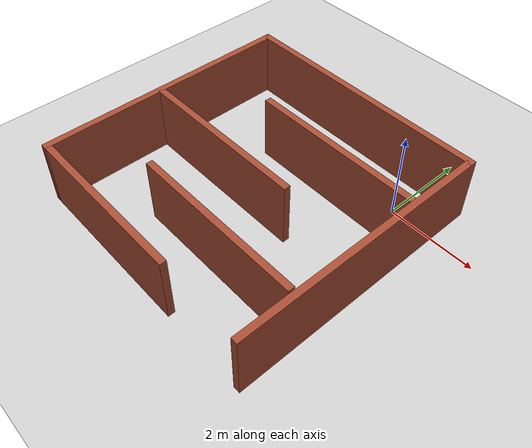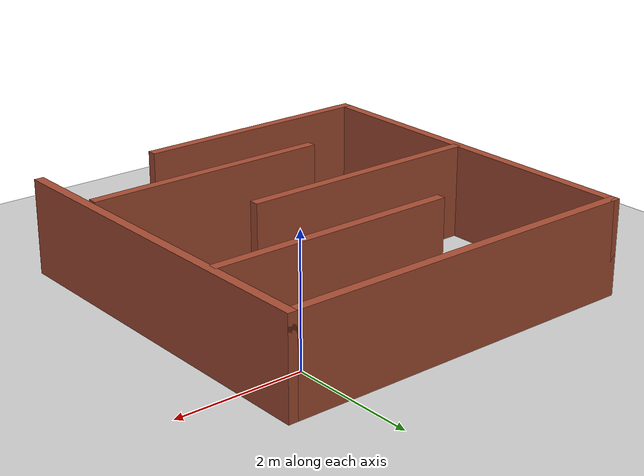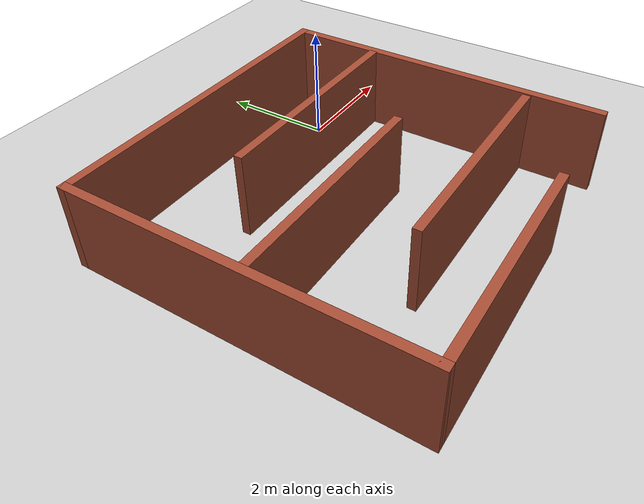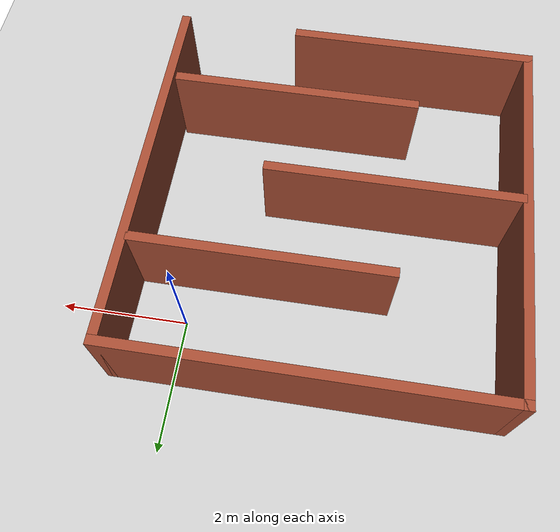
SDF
<sdf version="1.6">
 <world name="default">
  <light name="sun" type="directional">
   <pose>0 0 10 0 -0 0</pose>
   <diffuse>0.8 0.8 0.8 1</diffuse>
   <specular>0.2 0.2 0.2 1</specular>
   <attenuation>
    <range>1000</range>
    <constant>0.9</constant>
    <linear>0.01</linear>
    <quadratic>0.001</quadratic>
   </attenuation>
   <direction>-0.5 0.1 -0.9</direction>
  </light>
  <model name="ground_plane">
   <static>1</static>
   <link name="link">
    <collision name="collision">
     <geometry><plane><normal>0 0 1</normal><size>100 100</size></plane></geometry>
     <surface>
      <contact><collide_bitmask>65535</collide_bitmask></contact>
      <friction><ode><mu>100</mu><mu2>50</mu2></ode></friction>
     </surface>
    </collision>
    <visual name="visual">
     <cast_shadows>0</cast_shadows>
     <geometry><plane><normal>0 0 1</normal><size>100 100</size></plane></geometry>
     <material>
      <script><uri>file://media/materials/scripts/gazebo.material</uri><name>Gazebo/Grey</name></script>
     </material>
    </visual>
   </link>
  </model>
  <physics name="default_physics" default="0" type="ode">
   <real_time_update_rate>1000</real_time_update_rate>
   <max_step_size>0.001</max_step_size>
   <real_time_factor>1</real_time_factor>
   <ode>
    <solver>
     <type>quick</type>
     <iters>150</iters>
     <precon_iters>0</precon_iters>
     <sor>1.4</sor>
     <use_dynamic_moi_rescaling>1</use_dynamic_moi_rescaling>
    </solver>
    <constraints>
     <cfm>1e-05</cfm>
     <erp>0.2</erp>
     <contact_max_correcting_vel>2000</contact_max_correcting_vel>
     <contact_surface_layer>0.01</contact_surface_layer>
    </constraints>
   </ode>
  </physics>
  <scene><ambient>0.4 0.4 0.4 1</ambient><background>0.7 0.7 0.7 1</background><shadows>1</shadows></scene>
  <gravity>0 0 -9.8</gravity>
  <magnetic_field>6e-06 2.3e-05 -4.2e-05</magnetic_field>
  <atmosphere type="adiabatic"/>
  <spherical_coordinates>
   <surface_model>EARTH_WGS84</surface_model>
   <latitude_deg>0</latitude_deg>
   <longitude_deg>0</longitude_deg>
   <elevation>0</elevation>
   <heading_deg>0</heading_deg>
  </spherical_coordinates>
  <audio><device>default</device></audio>
  <model name="zig-zag">
   <pose>-2 -2 0 0 -0 0</pose>
   <link name="Wall_0">
    <collision name="Wall_0_Collision">
     <geometry><box><size>6 0.15 1.5</size></box></geometry>
     <pose>0 0 0.75 0 -0 0</pose>
    </collision>
    <visual name="Wall_0_Visual">
     <pose>0 0 0.75 0 -0 0</pose>
     <geometry><box><size>6 0.15 1.5</size></box></geometry>
     <material>
      <script><uri>file://media/materials/scripts/gazebo.material</uri><name>Gazebo/Bricks</name></script>
      <ambient>1 1 1 1</ambient>
     </material>
     <meta><layer>0</layer></meta>
    </visual>
    <pose>0 2.925 0 0 -0 0</pose>
   </link>
   <link name="Wall_13">
    <collision name="Wall_13_Collision">
     <geometry><box><size>4 0.15 1.5</size></box></geometry>
     <pose>0 0 0.75 0 -0 0</pose>
    </collision>
    <visual name="Wall_13_Visual">
     <pose>0 0 0.75 0 -0 0</pose>
     <geometry><box><size>4 0.15 1.5</size></box></geometry>
     <material>
      <script><uri>file://media/materials/scripts/gazebo.material</uri><name>Gazebo/Bricks</name></script>
      <ambient>1 1 1 1</ambient>
     </material>
     <meta><layer>0</layer></meta>
    </visual>
    <pose>0.879 1.31 0 0 -0 3.14159</pose>
   </link>
   <link name="Wall_17">
    <collision name="Wall_17_Collision">
     <geometry><box><size>4 0.15 1.5</size></box></geometry>
     <pose>0 0 0.75 0 -0 0</pose>
    </collision>
    <visual name="Wall_17_Visual">
     <pose>0 0 0.75 0 -0 0</pose>
     <geometry><box><size>4 0.15 1.5</size></box></geometry>
     <material>
      <script><uri>file://media/materials/scripts/gazebo.material</uri><name>Gazebo/Bricks</name></script>
      <ambient>1 1 1 1</ambient>
     </material>
     <meta><layer>0</layer></meta>
    </visual>
    <pose>-0.905 -0.185 0 0 -0 0</pose>
   </link>
   <link name="Wall_21">
    <collision name="Wall_21_Collision">
     <geometry><box><size>4 0.15 1.5</size></box></geometry>
     <pose>0 0 0.75 0 -0 0</pose>
    </collision>
    <visual name="Wall_21_Visual">
     <pose>0 0 0.75 0 -0 0</pose>
     <geometry><box><size>4 0.15 1.5</size></box></geometry>
     <material>
      <script><uri>file://media/materials/scripts/gazebo.material</uri><name>Gazebo/Bricks</name></script>
      <ambient>1 1 1 1</ambient>
     </material>
     <meta><layer>0</layer></meta>
    </visual>
    <pose>0.813 -1.692 0 0 -0 3.14159</pose>
   </link>
   <link name="Wall_4">
    <collision name="Wall_4_Collision">
     <geometry><box><size>6 0.15 1.5</size></box></geometry>
     <pose>0 0 0.75 0 -0 0</pose>
    </collision>
    <visual name="Wall_4_Visual">
     <pose>0 0 0.75 0 -0 0</pose>
     <geometry><box><size>6 0.15 1.5</size></box></geometry>
     <material>
      <script><uri>file://media/materials/scripts/gazebo.material</uri><name>Gazebo/Bricks</name></script>
      <ambient>1 1 1 1</ambient>
     </material>
     <meta><layer>0</layer></meta>
    </visual>
    <pose>-2.925 0 0 0 -0 -1.5708</pose>
   </link>
   <link name="Wall_5">
    <collision name="Wall_5_Collision">
     <geometry><box><size>4 0.15 1.5</size></box></geometry>
     <pose>0 0 0.75 0 -0 0</pose>
    </collision>
    <visual name="Wall_5_Visual">
     <pose>0 0 0.75 0 -0 0</pose>
     <geometry><box><size>4 0.15 1.5</size></box></geometry>
     <material>
      <script><uri>file://media/materials/scripts/gazebo.material</uri><name>Gazebo/Bricks</name></script>
      <ambient>1 1 1 1</ambient>
     </material>
     <meta><layer>0</layer></meta>
    </visual>
    <pose>-1 -2.925 0 0 -0 0</pose>
   </link>
   <link name="Wall_8">
    <collision name="Wall_8_Collision">
     <geometry><box><size>6 0.15 1.5</size></box></geometry>
     <pose>0 0 0.75 0 -0 0</pose>
    </collision>
    <visual name="Wall_8_Visual">
     <pose>0 0 0.75 0 -0 0</pose>
     <geometry><box><size>6 0.15 1.5</size></box></geometry>
     <material>
      <script><uri>file://media/materials/scripts/gazebo.material</uri><name>Gazebo/Bricks</name></script>
      <ambient>1 1 1 1</ambient>
     </material>
     <meta><layer>0</layer></meta>
    </visual>
    <pose>2.925 0 0 0 -0 -1.5708</pose>
   </link>
   <static>1</static>
  </model>
 </world>
</sdf>
